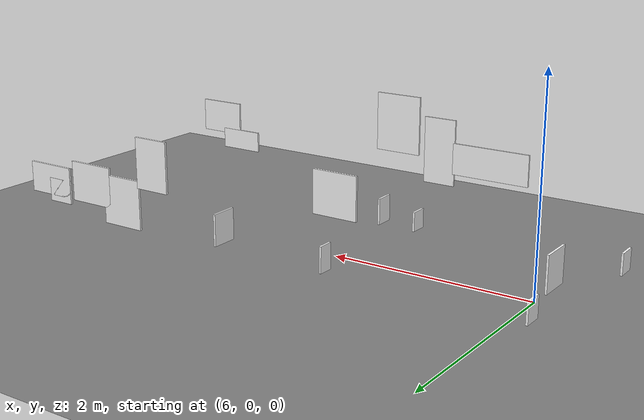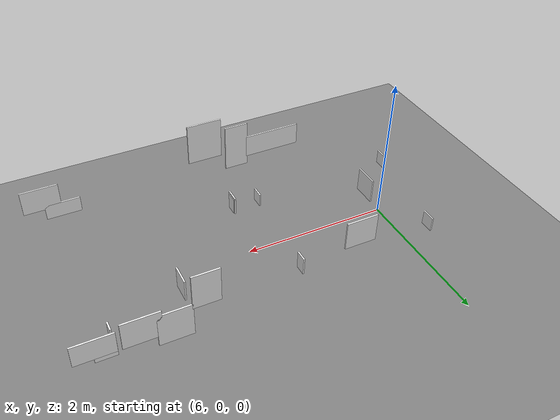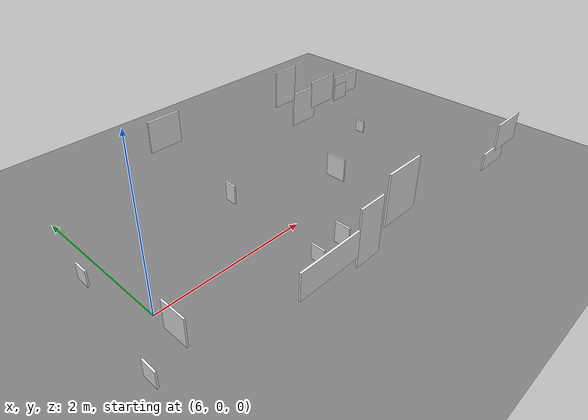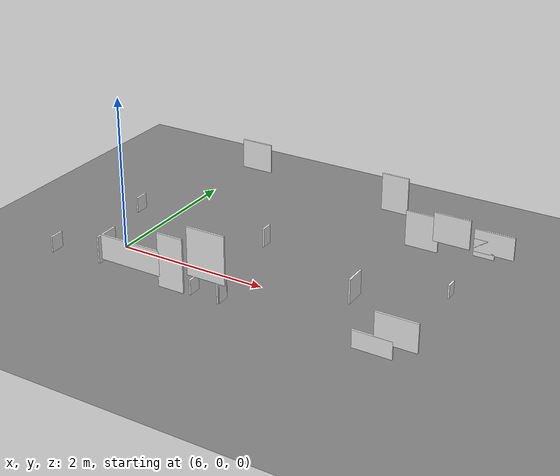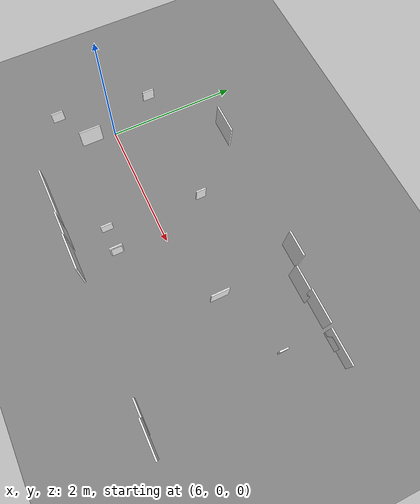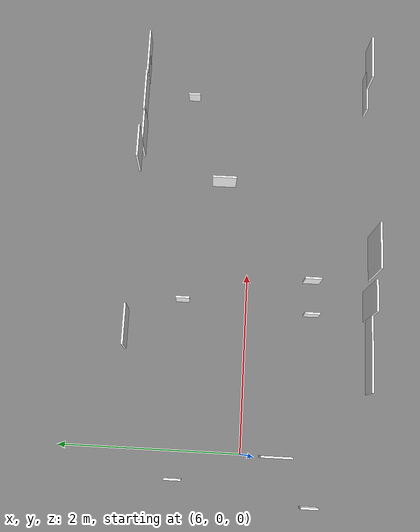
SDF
<sdf version="1.9">
 <world name="tunnel_world">
  <model name="ground_plane">
   <static>true</static>
   <link name="ground">
    <collision name="ground_collision">
     <geometry><plane><normal>0 0 1</normal><size>100 100</size></plane></geometry>
    </collision>
    <visual name="ground_visual">
     <geometry><plane><normal>0 0 1</normal><size>100 100</size></plane></geometry>
     <material>
      <diffuse>0.50 0.50 0.50 1</diffuse>
      <emissive>0.08 0.08 0.08 1</emissive>
      <ambient>0.5 0.5 0.5</ambient>
     </material>
    </visual>
   </link>
  </model>
  <model name="defect_crack_02">
   <static>true</static>
   <pose>10.267 1.25 0.563 0 0 0</pose>
   <link name="link">
    <visual name="visual">
     <laser_retro>500</laser_retro>
     <geometry><box><size>0.26 0.02 0.223</size></box></geometry>
     <material>
      <ambient>1 1 1 1</ambient>
      <diffuse>1 1 1 1</diffuse>
      <emissive>0.05 0.05 0.05 1</emissive>
      <specular>0.05 0.05 0.05 1</specular>
      <pbr>
       <metal>
        <albedo_map>file:///home/ylf/workspace/inspection_robot/data_gen/textures/crack_5.png</albedo_map>
        <metalness>0.0</metalness>
        <roughness>0.9</roughness>
       </metal>
      </pbr>
     </material>
    </visual>
    <collision name="collision"><geometry><box><size>0.26 0.02 0.223</size></box></geometry></collision>
   </link>
  </model>
  <model name="defect_crack_03">
   <static>true</static>
   <pose>9.857 1.25 0.694 0 0 0</pose>
   <link name="link">
    <visual name="visual">
     <laser_retro>500</laser_retro>
     <geometry><box><size>0.465 0.02 0.375</size></box></geometry>
     <material>
      <ambient>1 1 1 1</ambient>
      <diffuse>1 1 1 1</diffuse>
      <emissive>0.05 0.05 0.05 1</emissive>
      <specular>0.05 0.05 0.05 1</specular>
      <pbr>
       <metal>
        <albedo_map>file:///home/ylf/workspace/inspection_robot/data_gen/textures/crack_4.png</albedo_map>
        <metalness>0.0</metalness>
        <roughness>0.9</roughness>
       </metal>
      </pbr>
     </material>
    </visual>
    <collision name="collision"><geometry><box><size>0.465 0.02 0.375</size></box></geometry></collision>
   </link>
  </model>
  <model name="defect_crack_08">
   <static>true</static>
   <pose>10.083 -1.25 0.56 0 0 0</pose>
   <link name="link">
    <visual name="visual">
     <laser_retro>500</laser_retro>
     <geometry><box><size>0.461 0.02 0.211</size></box></geometry>
     <material>
      <ambient>1 1 1 1</ambient>
      <diffuse>1 1 1 1</diffuse>
      <emissive>0.05 0.05 0.05 1</emissive>
      <specular>0.05 0.05 0.05 1</specular>
      <pbr>
       <metal>
        <albedo_map>file:///home/ylf/workspace/inspection_robot/data_gen/textures/crack_3.png</albedo_map>
        <metalness>0.0</metalness>
        <roughness>0.9</roughness>
       </metal>
      </pbr>
     </material>
    </visual>
    <collision name="collision"><geometry><box><size>0.461 0.02 0.211</size></box></geometry></collision>
   </link>
  </model>
  <model name="defect_equip_intrusion_02">
   <static>true</static>
   <pose>9.082 0.315 0.17 0 0 0</pose>
   <link name="link">
    <visual name="visual">
     <laser_retro>900</laser_retro>
     <geometry><box><size>0.02 0.276 0.32</size></box></geometry>
     <material>
      <ambient>1 1 1 1</ambient>
      <diffuse>1 1 1 1</diffuse>
      <emissive>0.05 0.05 0.05 1</emissive>
      <specular>0.05 0.05 0.05 1</specular>
      <pbr>
       <metal>
        <albedo_map>file:///home/ylf/workspace/inspection_robot/data_gen/textures/equip_intrusion_2.png</albedo_map>
        <metalness>0.0</metalness>
        <roughness>0.9</roughness>
       </metal>
      </pbr>
     </material>
    </visual>
   </link>
  </model>
  <model name="defect_equip_intrusion_03">
   <static>true</static>
   <pose>5.99 -0.367 0.189 0 0 0</pose>
   <link name="link">
    <visual name="visual">
     <laser_retro>900</laser_retro>
     <geometry><box><size>0.02 0.338 0.359</size></box></geometry>
     <material>
      <ambient>1 1 1 1</ambient>
      <diffuse>1 1 1 1</diffuse>
      <emissive>0.05 0.05 0.05 1</emissive>
      <specular>0.05 0.05 0.05 1</specular>
      <pbr>
       <metal>
        <albedo_map>file:///home/ylf/workspace/inspection_robot/data_gen/textures/equip_intrusion_5.png</albedo_map>
        <metalness>0.0</metalness>
        <roughness>0.9</roughness>
       </metal>
      </pbr>
     </material>
    </visual>
   </link>
  </model>
  <model name="defect_leakage_02">
   <static>true</static>
   <pose>7.183 1.25 1.056 0 0 0</pose>
   <link name="link">
    <visual name="visual">
     <laser_retro>300</laser_retro>
     <geometry><box><size>0.405 0.02 0.37</size></box></geometry>
     <material>
      <ambient>1 1 1 1</ambient>
      <diffuse>1 1 1 1</diffuse>
      <emissive>0.05 0.05 0.05 1</emissive>
      <specular>0.05 0.05 0.05 1</specular>
      <pbr>
       <metal>
        <albedo_map>file:///home/ylf/workspace/inspection_robot/data_gen/textures/leakage_1.png</albedo_map>
        <metalness>0.0</metalness>
        <roughness>0.9</roughness>
       </metal>
      </pbr>
     </material>
    </visual>
    <collision name="collision"><geometry><box><size>0.405 0.02 0.37</size></box></geometry></collision>
   </link>
  </model>
  <model name="defect_leakage_03">
   <static>true</static>
   <pose>9.478 1.25 0.589 0 0 0</pose>
   <link name="link">
    <visual name="visual">
     <laser_retro>300</laser_retro>
     <geometry><box><size>0.422 0.02 0.458</size></box></geometry>
     <material>
      <ambient>1 1 1 1</ambient>
      <diffuse>1 1 1 1</diffuse>
      <emissive>0.05 0.05 0.05 1</emissive>
      <specular>0.05 0.05 0.05 1</specular>
      <pbr>
       <metal>
        <albedo_map>file:///home/ylf/workspace/inspection_robot/data_gen/textures/leakage_5.png</albedo_map>
        <metalness>0.0</metalness>
        <roughness>0.9</roughness>
       </metal>
      </pbr>
     </material>
    </visual>
    <collision name="collision"><geometry><box><size>0.422 0.02 0.458</size></box></geometry></collision>
   </link>
  </model>
  <model name="defect_leakage_05">
   <static>true</static>
   <pose>7.616 -1.25 0.797 0 0 0</pose>
   <link name="link">
    <visual name="visual">
     <laser_retro>300</laser_retro>
     <geometry><box><size>0.333 0.02 0.661</size></box></geometry>
     <material>
      <ambient>1 1 1 1</ambient>
      <diffuse>1 1 1 1</diffuse>
      <emissive>0.05 0.05 0.05 1</emissive>
      <specular>0.05 0.05 0.05 1</specular>
      <pbr>
       <metal>
        <albedo_map>file:///home/ylf/workspace/inspection_robot/data_gen/textures/leakage_3.png</albedo_map>
        <metalness>0.0</metalness>
        <roughness>0.9</roughness>
       </metal>
      </pbr>
     </material>
    </visual>
    <collision name="collision"><geometry><box><size>0.333 0.02 0.661</size></box></geometry></collision>
   </link>
  </model>
  <model name="defect_leakage_08">
   <static>true</static>
   <pose>7.068 -1.25 0.745 0 0 0</pose>
   <link name="link">
    <visual name="visual">
     <laser_retro>300</laser_retro>
     <geometry><box><size>0.799 0.02 0.312</size></box></geometry>
     <material>
      <ambient>1 1 1 1</ambient>
      <diffuse>1 1 1 1</diffuse>
      <emissive>0.05 0.05 0.05 1</emissive>
      <specular>0.05 0.05 0.05 1</specular>
      <pbr>
       <metal>
        <albedo_map>file:///home/ylf/workspace/inspection_robot/data_gen/textures/leakage_1.png</albedo_map>
        <metalness>0.0</metalness>
        <roughness>0.9</roughness>
       </metal>
      </pbr>
     </material>
    </visual>
    <collision name="collision"><geometry><box><size>0.799 0.02 0.312</size></box></geometry></collision>
   </link>
  </model>
  <model name="defect_rail_fastener_broken_02">
   <static>true</static>
   <pose>5.711 0.717 0.256 0 0 0</pose>
   <link name="link">
    <visual name="visual">
     <laser_retro>450</laser_retro>
     <geometry><box><size>0.02 0.182 0.202</size></box></geometry>
     <material>
      <ambient>1 1 1 1</ambient>
      <diffuse>1 1 1 1</diffuse>
      <emissive>0.05 0.05 0.05 1</emissive>
      <specular>0.05 0.05 0.05 1</specular>
      <pbr>
       <metal>
        <albedo_map>file:///home/ylf/workspace/inspection_robot/data_gen/textures/rail_fastener_broken_2.png</albedo_map>
        <metalness>0.0</metalness>
        <roughness>0.9</roughness>
       </metal>
      </pbr>
     </material>
    </visual>
   </link>
  </model>
  <model name="defect_rail_fastener_loose_01">
   <static>true</static>
   <pose>7.922 -0.717 0.285 0 0 0</pose>
   <link name="link">
    <visual name="visual">
     <laser_retro>380</laser_retro>
     <geometry><box><size>0.02 0.187 0.26</size></box></geometry>
     <material>
      <ambient>1 1 1 1</ambient>
      <diffuse>1 1 1 1</diffuse>
      <emissive>0.05 0.05 0.05 1</emissive>
      <specular>0.05 0.05 0.05 1</specular>
      <pbr>
       <metal>
        <albedo_map>file:///home/ylf/workspace/inspection_robot/data_gen/textures/rail_fastener_loose_5.png</albedo_map>
        <metalness>0.0</metalness>
        <roughness>0.9</roughness>
       </metal>
      </pbr>
     </material>
    </visual>
   </link>
  </model>
  <model name="defect_rail_fastener_loose_06">
   <static>true</static>
   <pose>10.105 0.717 0.239 0 0 0</pose>
   <link name="link">
    <visual name="visual">
     <laser_retro>380</laser_retro>
     <geometry><box><size>0.02 0.132 0.168</size></box></geometry>
     <material>
      <ambient>1 1 1 1</ambient>
      <diffuse>1 1 1 1</diffuse>
      <emissive>0.05 0.05 0.05 1</emissive>
      <specular>0.05 0.05 0.05 1</specular>
      <pbr>
       <metal>
        <albedo_map>file:///home/ylf/workspace/inspection_robot/data_gen/textures/rail_fastener_loose_5.png</albedo_map>
        <metalness>0.0</metalness>
        <roughness>0.9</roughness>
       </metal>
      </pbr>
     </material>
    </visual>
   </link>
  </model>
  <model name="defect_rail_fastener_loose_08">
   <static>true</static>
   <pose>7.541 -0.717 0.25 0 0 0</pose>
   <link name="link">
    <visual name="visual">
     <laser_retro>380</laser_retro>
     <geometry><box><size>0.02 0.17 0.19</size></box></geometry>
     <material>
      <ambient>1 1 1 1</ambient>
      <diffuse>1 1 1 1</diffuse>
      <emissive>0.05 0.05 0.05 1</emissive>
      <specular>0.05 0.05 0.05 1</specular>
      <pbr>
       <metal>
        <albedo_map>file:///home/ylf/workspace/inspection_robot/data_gen/textures/rail_fastener_loose_3.png</albedo_map>
        <metalness>0.0</metalness>
        <roughness>0.9</roughness>
       </metal>
      </pbr>
     </material>
    </visual>
   </link>
  </model>
  <model name="defect_rail_fastener_missing_02">
   <static>true</static>
   <pose>7.93 -0.717 0.271 0 0 0</pose>
   <link name="link">
    <visual name="visual">
     <laser_retro>520</laser_retro>
     <geometry><box><size>0.02 0.158 0.233</size></box></geometry>
     <material>
      <ambient>1 1 1 1</ambient>
      <diffuse>1 1 1 1</diffuse>
      <emissive>0.05 0.05 0.05 1</emissive>
      <specular>0.05 0.05 0.05 1</specular>
      <pbr>
       <metal>
        <albedo_map>file:///home/ylf/workspace/inspection_robot/data_gen/textures/rail_fastener_missing_1.png</albedo_map>
        <metalness>0.0</metalness>
        <roughness>0.9</roughness>
       </metal>
      </pbr>
     </material>
    </visual>
   </link>
  </model>
  <model name="defect_rail_fastener_missing_03">
   <static>true</static>
   <pose>7.637 0.717 0.278 0 0 0</pose>
   <link name="link">
    <visual name="visual">
     <laser_retro>520</laser_retro>
     <geometry><box><size>0.02 0.15 0.246</size></box></geometry>
     <material>
      <ambient>1 1 1 1</ambient>
      <diffuse>1 1 1 1</diffuse>
      <emissive>0.05 0.05 0.05 1</emissive>
      <specular>0.05 0.05 0.05 1</specular>
      <pbr>
       <metal>
        <albedo_map>file:///home/ylf/workspace/inspection_robot/data_gen/textures/rail_fastener_missing_2.png</albedo_map>
        <metalness>0.0</metalness>
        <roughness>0.9</roughness>
       </metal>
      </pbr>
     </material>
    </visual>
   </link>
  </model>
  <model name="defect_rail_fastener_missing_05">
   <static>true</static>
   <pose>5.497 -0.717 0.257 0 0 0</pose>
   <link name="link">
    <visual name="visual">
     <laser_retro>520</laser_retro>
     <geometry><box><size>0.02 0.185 0.204</size></box></geometry>
     <material>
      <ambient>1 1 1 1</ambient>
      <diffuse>1 1 1 1</diffuse>
      <emissive>0.05 0.05 0.05 1</emissive>
      <specular>0.05 0.05 0.05 1</specular>
      <pbr>
       <metal>
        <albedo_map>file:///home/ylf/workspace/inspection_robot/data_gen/textures/rail_fastener_missing_5.png</albedo_map>
        <metalness>0.0</metalness>
        <roughness>0.9</roughness>
       </metal>
      </pbr>
     </material>
    </visual>
   </link>
  </model>
  <model name="defect_spalling_02">
   <static>true</static>
   <pose>10.342 -1.25 0.787 0 0 0</pose>
   <link name="link">
    <visual name="visual">
     <laser_retro>700</laser_retro>
     <geometry><box><size>0.487 0.02 0.338</size></box></geometry>
     <material>
      <ambient>1 1 1 1</ambient>
      <diffuse>1 1 1 1</diffuse>
      <emissive>0.05 0.05 0.05 1</emissive>
      <specular>0.05 0.05 0.05 1</specular>
      <pbr>
       <metal>
        <albedo_map>file:///home/ylf/workspace/inspection_robot/data_gen/textures/spalling_1.png</albedo_map>
        <metalness>0.0</metalness>
        <roughness>0.9</roughness>
       </metal>
      </pbr>
     </material>
    </visual>
    <collision name="collision"><geometry><box><size>0.487 0.02 0.338</size></box></geometry></collision>
   </link>
  </model>
  <model name="defect_spalling_04">
   <static>true</static>
   <pose>8.087 -1.25 1.013 0 0 0</pose>
   <link name="link">
    <visual name="visual">
     <laser_retro>700</laser_retro>
     <geometry><box><size>0.481 0.02 0.584</size></box></geometry>
     <material>
      <ambient>1 1 1 1</ambient>
      <diffuse>1 1 1 1</diffuse>
      <emissive>0.05 0.05 0.05 1</emissive>
      <specular>0.05 0.05 0.05 1</specular>
      <pbr>
       <metal>
        <albedo_map>file:///home/ylf/workspace/inspection_robot/data_gen/textures/spalling_3.png</albedo_map>
        <metalness>0.0</metalness>
        <roughness>0.9</roughness>
       </metal>
      </pbr>
     </material>
    </visual>
    <collision name="collision"><geometry><box><size>0.481 0.02 0.584</size></box></geometry></collision>
   </link>
  </model>
  <model name="defect_spalling_05">
   <static>true</static>
   <pose>9.108 1.25 0.989 0 0 0</pose>
   <link name="link">
    <visual name="visual">
     <laser_retro>700</laser_retro>
     <geometry><box><size>0.343 0.02 0.469</size></box></geometry>
     <material>
      <ambient>1 1 1 1</ambient>
      <diffuse>1 1 1 1</diffuse>
      <emissive>0.05 0.05 0.05 1</emissive>
      <specular>0.05 0.05 0.05 1</specular>
      <pbr>
       <metal>
        <albedo_map>file:///home/ylf/workspace/inspection_robot/data_gen/textures/spalling_5.png</albedo_map>
        <metalness>0.0</metalness>
        <roughness>0.9</roughness>
       </metal>
      </pbr>
     </material>
    </visual>
    <collision name="collision"><geometry><box><size>0.343 0.02 0.469</size></box></geometry></collision>
   </link>
  </model>
  <model name="defect_spalling_07">
   <static>true</static>
   <pose>10.385 1.25 0.654 0 0 0</pose>
   <link name="link">
    <visual name="visual">
     <laser_retro>700</laser_retro>
     <geometry><box><size>0.495 0.02 0.289</size></box></geometry>
     <material>
      <ambient>1 1 1 1</ambient>
      <diffuse>1 1 1 1</diffuse>
      <emissive>0.05 0.05 0.05 1</emissive>
      <specular>0.05 0.05 0.05 1</specular>
      <pbr>
       <metal>
        <albedo_map>file:///home/ylf/workspace/inspection_robot/data_gen/textures/spalling_3.png</albedo_map>
        <metalness>0.0</metalness>
        <roughness>0.9</roughness>
       </metal>
      </pbr>
     </material>
    </visual>
    <collision name="collision"><geometry><box><size>0.495 0.02 0.289</size></box></geometry></collision>
   </link>
  </model>
 </world>
</sdf>
